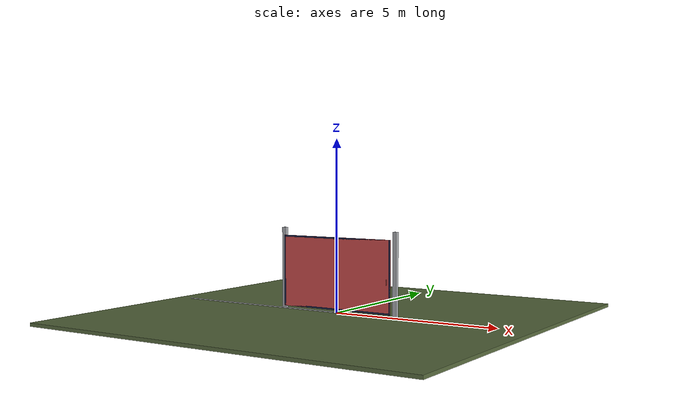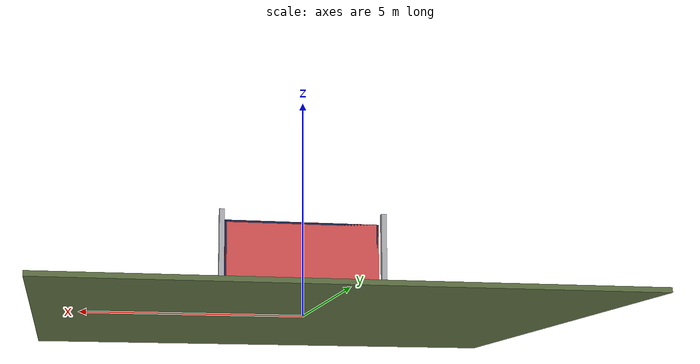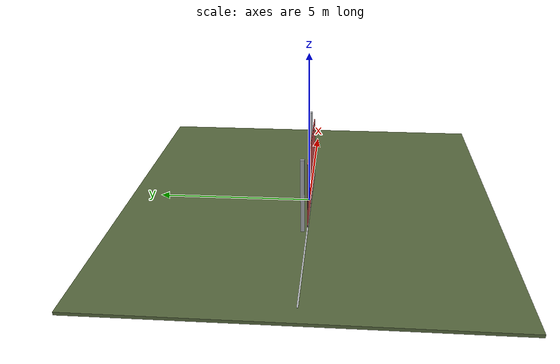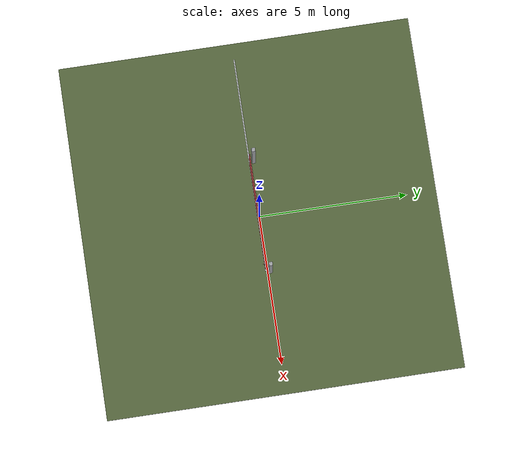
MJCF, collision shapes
<?xml version="1.0" ?>
<mujoco model="db0935_gate_sliding_minimal">
  <compiler angle="radian" meshdir="../../hardware" texturedir="../../textures" autolimits="true" inertiafromgeom="false"/>
  <option timestep="0.002" integrator="implicitfast" cone="elliptic" impratio="10" noslip_iterations="3">
    <flag multiccd="enable"/>
  </option>
  <size memory="16M"/>
  <default>
    <geom condim="4" solref="0.005 1" solimp="0.95 0.99 0.001"/>
    <joint solreflimit="0.005 1" solimplimit="0.95 0.99 0.001"/>
    <tendon solreflimit="0.005 1"/>
    <equality solref="0.002 1"/>
  </default>
  <visual>
    <headlight ambient="0.4 0.4 0.4" diffuse="0.7 0.7 0.7" specular="0.2 0.2 0.2"/>
    <quality shadowsize="4096"/>
    <map znear="0.01" zfar="60"/>
  </visual>
  <asset>
    <mesh name="pull_1e5d69a91a" file="pull_1e5d69a91a.obj"/>
    <material name="mat_floor" rgba="0.35 0.42 0.25 1" specular="0.2" shininess="0.15" reflectance="0"/>
    <material name="mat_wall" rgba="0.78 0.76 0.7 1" specular="0.2" shininess="0.1" reflectance="0"/>
    <material name="mat_frame" rgba="0.65 0.66 0.68 1" specular="0.74" shininess="0.5" reflectance="0.36"/>
    <material name="mat_track" rgba="0.8 0.81 0.83 1" specular="0.8" shininess="0.6" reflectance="0.4"/>
    <material name="mat_leaf" rgba="0.09 0.13 0.28 1" specular="0.23" shininess="0.58" reflectance="0.02"/>
    <material name="mat_mesh_infill" rgba="0.6 0.62 0.64 0.55" specular="0.68" shininess="0.3" reflectance="0.1"/>
    <material name="mat_roller" rgba="0.65 0.66 0.68 1" specular="0.74" shininess="0.5" reflectance="0.36"/>
    <material name="mat_op_stainless" rgba="0.75 0.76 0.77 1" specular="0.8" shininess="0.65" reflectance="0.4"/>
    <material name="mat_ebolt" rgba="0.75 0.76 0.77 1" specular="0.8" shininess="0.65" reflectance="0.4"/>
    <material name="mat_hook" rgba="0.75 0.76 0.77 1" specular="0.8" shininess="0.65" reflectance="0.4"/>
    <texture name="skybox" type="skybox" builtin="gradient" rgb1="0.6 0.7 0.85" rgb2="0.9 0.92 0.95" width="256" height="256"/>
  </asset>
  <worldbody>
    <light name="sun" pos="1.5 -2.5 4" dir="-0.3 0.5 -0.8" directional="true" diffuse="0.8 0.8 0.8" specular="0.3 0.3 0.3" castshadow="true"/>
    <light name="fill" pos="-1.5 2.5 3" dir="0.3 -0.5 -0.7" directional="true" diffuse="0.35 0.35 0.4" castshadow="false"/>
    <camera name="robot_view" pos="0 -4.046875 2.208125" xyaxes="1 0 0 0 0.26963 0.962964" fovy="52"/>
    <camera name="far_view" pos="0 4.046875 2.208125" xyaxes="-1 0 0 0 -0.26963 0.962964" fovy="52"/>
    <camera name="iso" pos="3.075625 -3.399375 2.855625" xyaxes="0.741536 0.670913 0 -0.242917 0.268487 0.932151" fovy="46"/>
    <camera name="detail_handle" pos="1.96 -1.2325 1.35" xyaxes="0.975133 0.221621 0 -0.065674 0.288965 0.955084" fovy="38"/>
    <geom name="floor" type="box" size="6 6 0.05" pos="0 0 -0.05" material="mat_floor" group="0" contype="1" conaffinity="1" friction="0.8 0.005 0.0001" density="2400"/>
    <geom name="post_l" type="box" size="0.06 0.06 1.2" pos="-1.885 0.08 1.2" material="mat_frame" group="0" contype="1" conaffinity="1" friction="0.6 0.005 0.0001" density="7850"/>
    <geom name="post_r" type="box" size="0.06 0.06 1.2" pos="1.885 0.08 1.2" material="mat_frame" group="0" contype="1" conaffinity="1" friction="0.6 0.005 0.0001" density="7850"/>
    <geom name="gate_rail" type="box" size="3.65 0.02 0.012" pos="-1.8 -0.06 0.012" material="mat_track" group="0" contype="1" conaffinity="1" friction="0.6 0.005 0.0001" density="2700"/>
    <site name="approach_point" pos="0 -1.5 0" quat="1 0 0 0" size="0.05" rgba="0.2 0.9 0.2 0.5" group="4"/>
    <site name="goal_point" pos="0 1.5 0" quat="1 0 0 0" size="0.05" rgba="0.2 0.9 0.2 0.5" group="4"/>
    <site name="door_plane_center" pos="0 0 1.075" quat="1 0 0 0" size="0.02" rgba="0.2 0.9 0.2 0.5" group="4"/>
    <body name="leaf" pos="0 -0.06 0">
      <inertial pos="0.002344 -0.000086 1.129822" mass="329.086632" quat="0.707117 0.707096 0.000102 -0.000198" diaginertia="120.80651361 356.271487656 477.039868164"/>
      <joint name="leaf_slide" type="slide" axis="-1 0 0" limited="true" range="0 3.6" damping="18.46185" frictionloss="104.933141" armature="0.5"/>
      <geom name="leaf_slab_col" type="box" size="1.8 0.0125 1.05" pos="0 0 1.13" material="mat_leaf" group="3" contype="1" conaffinity="1" rgba="0.8 0.3 0.3 0.25" friction="0.45 0.005 0.0001" density="1"/>
      <geom name="leaf_rail_b" type="box" size="1.8 0.0125 0.0225" pos="0 0 0.1025" material="mat_leaf" group="1" contype="0" conaffinity="0" density="1"/>
      <geom name="leaf_rail_t" type="box" size="1.8 0.0125 0.0225" pos="0 0 2.1575" material="mat_leaf" group="1" contype="0" conaffinity="0" density="1"/>
      <geom name="leaf_stile_h" type="box" size="0.0225 0.0125 1.05" pos="-1.7775 0 1.13" material="mat_leaf" group="1" contype="0" conaffinity="0" density="1"/>
      <geom name="leaf_stile_l" type="box" size="0.0225 0.0125 1.05" pos="1.7775 0 1.13" material="mat_leaf" group="1" contype="0" conaffinity="0" density="1"/>
      <geom name="leaf_mesh" type="box" size="1.755 0.0015 1.005" pos="0 0 1.13" material="mat_mesh_infill" group="1" contype="0" conaffinity="0" density="1"/>
      <geom name="leaf_pull_n" type="mesh" mesh="pull_1e5d69a91a" pos="1.71 -0.0125 1" quat="0.707107 0.707107 0 0" material="mat_op_stainless" group="1" contype="0" conaffinity="0" density="3000"/>
      <geom name="leaf_pull_col_n" type="capsule" size="0.0095 0.08" pos="1.71 -0.0725 1" material="mat_op_stainless" group="3" contype="1" conaffinity="1" rgba="0.8 0.3 0.3 0.25" friction="0.7 0.01 0.0001" density="3000"/>
      <site name="leaf_pull_grip_n" pos="1.71 -0.0725 1" quat="1 0 0 0" size="0.012" rgba="0.2 0.9 0.2 0.5" group="4"/>
      <site name="leaf_edge_mid" pos="1.8 0 1.13" quat="1 0 0 0" size="0.02" rgba="0.2 0.9 0.2 0.5" group="4"/>
    </body>
  </worldbody>
  <sensor>
    <jointpos name="leaf_slide_pos" joint="leaf_slide"/>
    <jointvel name="leaf_slide_vel" joint="leaf_slide"/>
  </sensor>
</mujoco>
